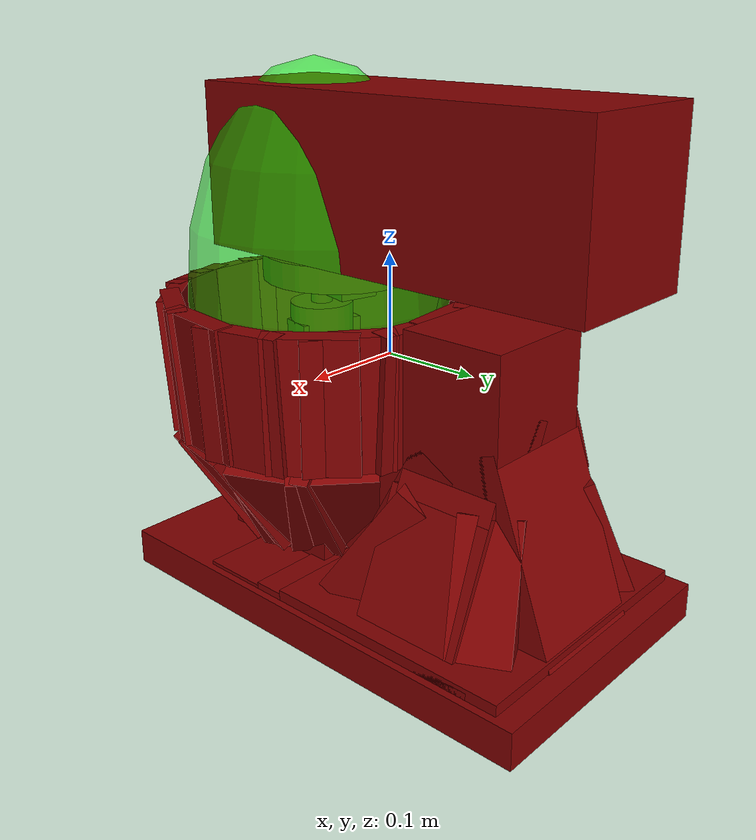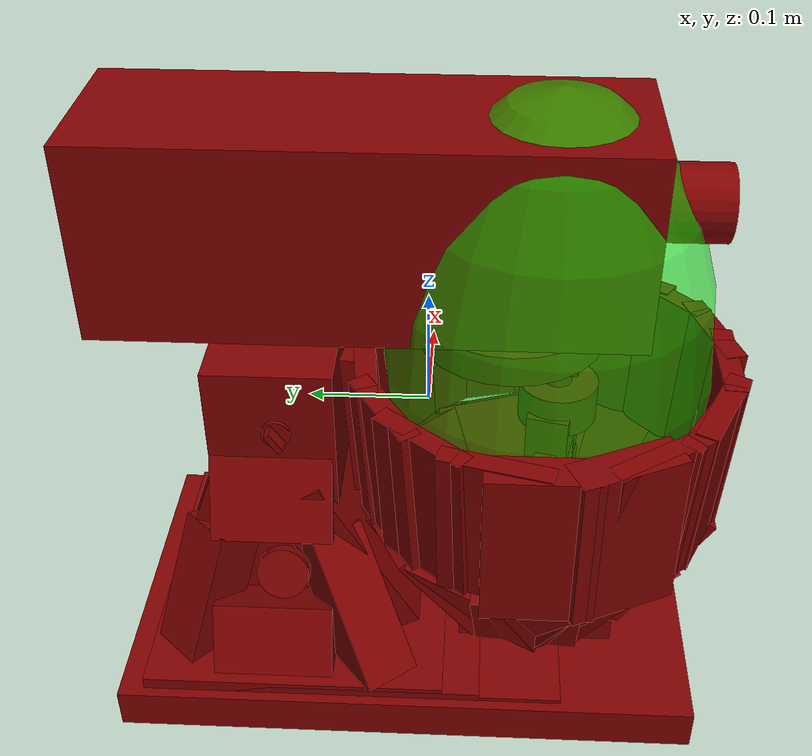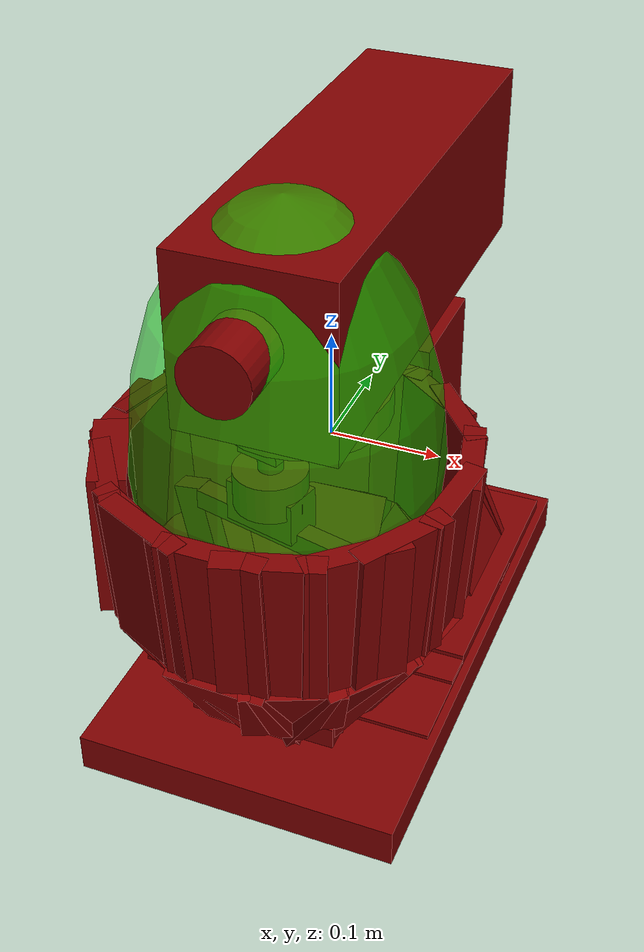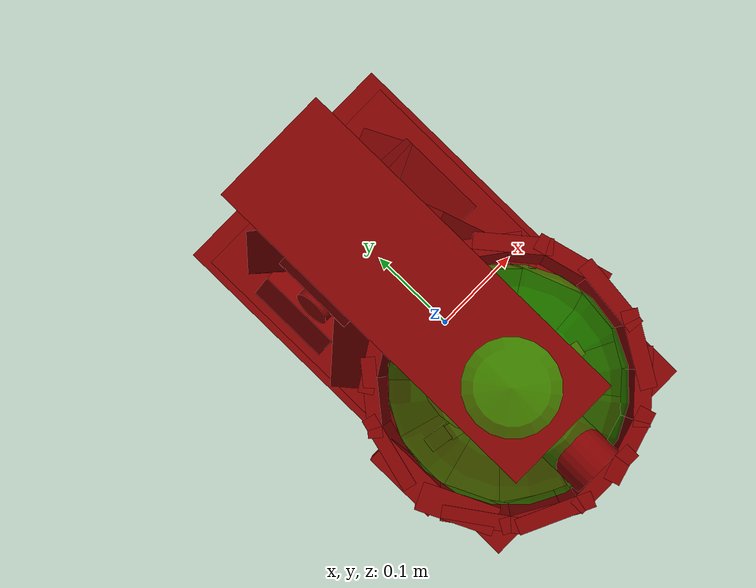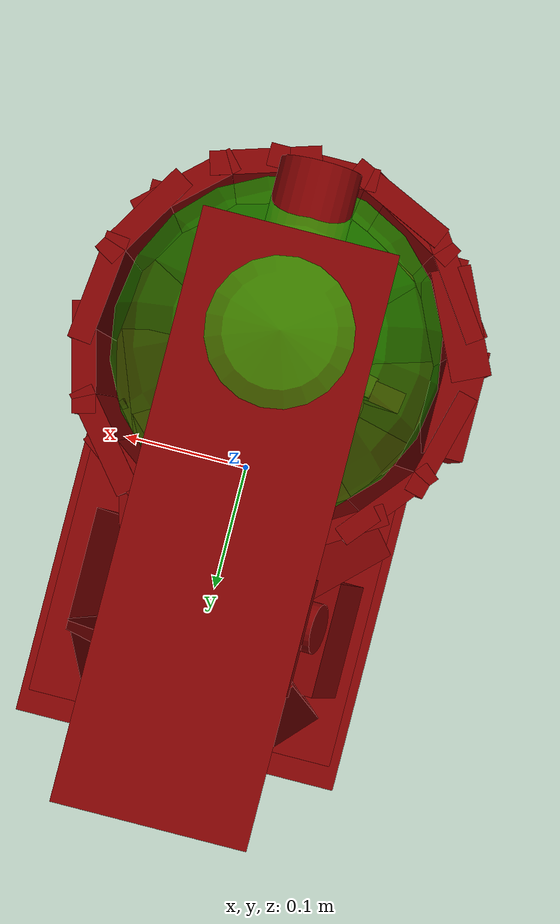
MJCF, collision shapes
<?xml version='1.0' encoding='UTF-8'?>
<mujoco model="model">
  <option timestep="0.002" gravity="0.0 0.0 -9.81"/>
  <compiler angle="radian"/>
  <asset>
    <mesh file="visuals/blender.obj" name="blender_vis"/>
    <mesh file="visuals/bowl.obj" name="bowl_vis"/>
    <mesh file="visuals/button_head_lock.obj" name="button_head_lock_vis"/>
    <mesh file="visuals/head.obj" name="head_vis"/>
    <mesh file="visuals/knob_speed.obj" name="knob_speed_vis"/>
    <mesh file="visuals/Body001.obj" name="Body001_vis"/>
    <texture file="visuals/T_BC001.png" name="Body001_material" type="2d"/>
    <material name="Body001_material" rgba="1 1 1 1.0" texture="Body001_material" shininess="0.141421377658844" specular="0.81"/>
    <texture file="visuals/T_BC001.png" name="bowl_material" type="2d"/>
    <material name="bowl_material" rgba="1 1 1 1.0" texture="bowl_material" shininess="0.141421377658844" specular="1"/>
    <texture file="visuals/T_BC001.png" name="button_head_lock_material" type="2d"/>
    <material name="button_head_lock_material" rgba="1 1 1 1.0" texture="button_head_lock_material" shininess="0.141421377658844" specular="1"/>
    <texture file="visuals/T_BC001.png" name="head_material" type="2d"/>
    <material name="head_material" rgba="1 1 1 1.0" texture="head_material" shininess="0.141421377658844" specular="0.81"/>
    <texture file="visuals/T_BC001.png" name="blender_material" type="2d"/>
    <material name="blender_material" rgba="1 1 1 1.0" texture="blender_material" shininess="0.141421377658844" specular="1"/>
    <texture file="visuals/T_BC001.png" name="knob_speed_material" type="2d"/>
    <material name="knob_speed_material" rgba="1 1 1 1.0" texture="knob_speed_material" shininess="0.141421377658844" specular="1"/>
  </asset>
  <default>
    <default class="visual">
      <geom conaffinity="0" contype="0" group="1" type="mesh"/>
    </default>
    <default class="collision">
      <geom group="0" rgba="0.5 0 0 0.5"/>
    </default>
    <default class="spawn">
      <geom group="0" rgba="1 1 1 0.5" contype="0" conaffinity="0"/>
      <site group="0" rgba="1 1 1 0.5"/>
    </default>
    <default class="region">
      <geom group="1" conaffinity="0" contype="0" rgba="0 1 0 0"/>
    </default>
  </default>
  <worldbody>
    <body>
      <body name="object">
        <geom mesh="Body001_vis" type="mesh" solimp="0.998 0.998 0.001" solref="0.001 1" friction="0.95 0.3 0.1" class="visual" material="Body001_material"/>
        <geom type="box" pos="-0.00038789 0.01485773 -0.23647999" size="0.1470741182565689 0.24640962481498718 0.01819784753024578" quat="1.0 0.0 0.0 0.0" class="collision"/>
        <geom type="box" pos="0.00292891 0.19088578 -0.13983113" size="0.06197034567594528 0.020992998033761978 0.10480103641748428" quat="3.186945605193614e-07 4.054764024541413e-10 -0.17126384377479553 0.9852252006530762" class="collision"/>
        <geom type="box" pos="-0.09736945 0.12806405 -0.19254026" size="0.02340238355100155 0.051185041666030884 0.037328436970710754" quat="4.0934835965344973e-07 0.18937274813652039 6.279142206189192e-10 0.9819052815437317" class="collision"/>
        <geom type="box" pos="0.06233383 0.12636782 -0.15236485" size="0.0234023816883564 0.052881255745887756 0.09892302751541138" quat="4.989324224879965e-07 -0.1999048888683319 -9.668909228821576e-08 0.9798153042793274" class="collision"/>
        <geom type="box" pos="0.00475315 0.12636782 -0.08266360" size="0.06014612317085266 0.05288127809762955 0.13840007781982422" quat="1.0 0.0 0.0 0.0" class="collision"/>
        <geom type="box" pos="0.07992680 0.12295687 -0.17164442" size="0.0234023816883564 0.05629220977425575 0.0786064937710762" quat="4.989324224879965e-07 -0.1999048888683319 -9.668909228821576e-08 0.9798153042793274" class="collision"/>
        <geom type="box" pos="0.03296900 0.12636782 -0.06135498" size="0.0234023816883564 0.052881255745887756 0.05018816143274307" quat="4.989324224879965e-07 -0.1999048888683319 -9.668909228821576e-08 0.9798153042793274" class="collision"/>
        <geom type="box" pos="-0.00189286 0.06877020 -0.13500409" size="0.06679213792085648 0.025309335440397263 0.08402279764413834" quat="0.9671083092689514 -0.2543649673461914 -5.648036206370866e-17 4.208608428094833e-25" class="collision"/>
        <geom type="box" pos="0.00026927 0.11101803 -0.22556834" size="0.1389281153678894 0.12880635261535645 0.01819789782166481" quat="1.0 0.0 0.0 0.0" class="collision"/>
        <geom type="box" pos="0.00026927 0.07931788 -0.22973371" size="0.1389281153678894 0.12880635261535645 0.018197907134890556" quat="1.0 0.0 0.0 0.0" class="collision"/>
        <geom type="box" pos="0.00026927 0.00961112 -0.23297984" size="0.1389281153678894 0.12880635261535645 0.018197916448116302" quat="1.0 0.0 0.0 0.0" class="collision"/>
        <geom type="box" pos="-0.07219625 0.19080603 -0.16414109" size="0.021484268829226494 0.024510791525244713 0.06869032979011536" quat="0.35829052329063416 0.17631539702415466 -0.06910073757171631 0.9142023324966431" class="collision"/>
        <geom type="box" pos="0.07551569 0.17986972 -0.16324206" size="0.01742730475962162 0.029545053839683533 0.07128416001796722" quat="0.9555922150611877 0.0435466431081295 -0.18429800868034363 0.2257906198501587" class="collision"/>
        <geom type="box" pos="-0.08465333 0.06032729 -0.16277489" size="0.021484268829226494 0.024510791525244713 0.06869032979011536" quat="0.32037287950515747 -0.2896636128425598 -0.10357760637998581 -0.8959508538246155" class="collision"/>
        <geom type="box" pos="0.07238042 0.05758709 -0.15632893" size="0.021484268829226494 0.024510791525244713 0.06869032979011536" quat="0.7780860066413879 -0.17706523835659027 -0.2515576481819153 -0.5476758480072021" class="collision"/>
        <geom type="box" pos="-0.04764510 0.12806403 -0.06842386" size="0.02340238355100155 0.051185041666030884 0.037328436970710754" quat="4.0934835965344973e-07 0.18937274813652039 6.279142206189192e-10 0.9819052815437317" class="collision"/>
        <body name="bowl">
          <geom mesh="bowl_vis" type="mesh" solimp="0.998 0.998 0.001" solref="0.001 1" friction="0.95 0.3 0.1" class="visual" material="bowl_material"/>
          <geom type="box" pos="-0.14825541 -0.09078984 -0.02201490" size="0.016078859567642212 0.044406406581401825 0.06841394305229187" quat="1.0 0.0 0.0 0.0" class="collision"/>
          <geom type="box" pos="-0.01774631 0.04657630 -0.02033799" size="0.00875962246209383 0.044406406581401825 0.0681932121515274" quat="0.7471170425415039 -0.021018153056502342 -0.023651298135519028 -0.6639389991760254" class="collision"/>
          <geom type="box" pos="0.08515379 0.02529754 -0.02143297" size="0.010286817327141762 0.044406406581401825 0.0681932121515274" quat="0.447671115398407 -0.028289711102843285 -0.014171858318150043 -0.8936383128166199" class="collision"/>
          <geom type="box" pos="0.14092685 -0.05378194 -0.02099918" size="0.009610497392714024 0.044406406581401825 0.0681932121515274" quat="0.12310067564249039 -0.03139999881386757 -0.0038969668094068766 -0.9918896555900574" class="collision"/>
          <geom type="box" pos="0.12316208 -0.16939624 -0.01973897" size="0.009641319513320923 0.044406406581401825 0.0681932121515274" quat="0.2708934545516968 0.03045661188662052 -0.00857560709118843 0.9620891809463501" class="collision"/>
          <geom type="box" pos="0.04343400 -0.23388409 -0.02027542" size="0.00974887516349554 0.044406406581401825 0.0681932121515274" quat="0.5933062434196472 0.025463253259658813 -0.018782146275043488 0.804354727268219" class="collision"/>
          <geom type="box" pos="-0.06278898 -0.22765768 -0.02030126" size="0.009340297430753708 0.044406406581401825 0.0681932121515274" quat="0.8428366184234619 0.01700722984969616 -0.02668146975338459 0.537238597869873" class="collision"/>
          <geom type="box" pos="-0.12263401 -0.17601124 -0.02128506" size="0.008992565795779228 0.044406406581401825 0.0681932121515274" quat="0.954062819480896 0.009431536309421062 -0.03020252287387848 0.2979312539100647" class="collision"/>
          <geom type="box" pos="-0.00451419 -0.20228761 -0.14650001" size="0.009864562191069126 0.044406432658433914 0.0681932121515274" quat="0.6845924258232117 0.19955039024353027 -0.19691559672355652 0.672857403755188" class="collision"/>
          <geom type="box" pos="-0.08960299 -0.14894763 -0.14675215" size="0.009229958988726139 0.044406428933143616 0.0681932121515274" quat="0.925520658493042 0.0784800723195076 -0.2691411077976227 0.2545888125896454" class="collision"/>
          <geom type="box" pos="-0.09174184 -0.04561690 -0.14690633" size="0.010463465936481953 0.044406432658433914 0.06695568561553955" quat="0.9261558651924133 -0.06953360885381699 -0.27159008383750916 -0.2522681653499603" class="collision"/>
          <geom type="box" pos="-0.00199435 0.00854396 -0.14569246" size="0.011980590410530567 0.044406428933143616 0.06371644139289856" quat="0.6856235861778259 -0.19312475621700287 -0.2032213658094406 -0.6718066930770874" class="collision"/>
          <geom type="box" pos="0.07989004 -0.16364323 -0.14554908" size="0.010591658763587475 0.044406428933143616 0.0681932121515274" quat="0.30785584449768066 0.26688408851623535 -0.0858425498008728 0.9091912508010864" class="collision"/>
          <geom type="box" pos="-0.11137675 -0.00275032 -0.02006338" size="0.008105087094008923 0.044406406581401825 0.0681932121515274" quat="0.9396122694015503 -0.010787836275994778 -0.029745087027549744 -0.34077510237693787" class="collision"/>
          <geom type="box" pos="0.09087388 -0.05407166 -0.14876561" size="0.012311420403420925 0.044406428933143616 0.0655110701918602" quat="0.17554129660129547 -0.28112170100212097 -0.040944475680589676 -0.9425918459892273" class="collision"/>
          <geom type="box" pos="-0.13605917 -0.15204099 -0.02201490" size="0.016078781336545944 0.044406406581401825 0.06841429322957993" quat="0.9760299324989319 0.0 0.0 0.21763628721237183" class="collision"/>
          <geom type="box" pos="-0.14007670 -0.05667405 -0.02006339" size="0.008105087094008923 0.044406406581401825 0.0681932121515274" quat="0.9912547469139099 -0.00405564671382308 -0.03137991949915886 -0.12811297178268433" class="collision"/>
          <geom type="box" pos="-0.07627181 0.02775766 -0.02033799" size="0.00875962246209383 0.044406406581401825 0.0681932121515274" quat="0.8737058043479919 -0.015366965904831886 -0.02765868976712227 -0.48542454838752747" class="collision"/>
          <geom type="box" pos="0.02623842 0.05215663 -0.02143296" size="0.010286817327141762 0.044406406581401825 0.0681932121515274" quat="0.6580836772918701 -0.023814741522073746 -0.020832838490605354 -0.7522796988487244" class="collision"/>
          <geom type="box" pos="0.11000617 0.00431703 -0.02099919" size="0.009610498324036598 0.044406406581401825 0.0681932121515274" quat="0.3360210359096527 -0.02979923225939274 -0.010637335479259491 -0.9413228631019592" class="collision"/>
          <geom type="box" pos="0.14304172 -0.10789217 -0.01973897" size="0.009641320444643497 0.044406406581401825 0.0681932121515274" quat="0.055014610290527344 0.03159288316965103 -0.0017415826441720128 0.9979841113090515" class="collision"/>
          <geom type="box" pos="0.09826334 -0.20014261 -0.02027542" size="0.00974887516349554 0.044406406581401825 0.0681932121515274" quat="0.40402790904045105 0.02894057333469391 -0.012790211476385593 0.9141992926597595" class="collision"/>
          <geom type="box" pos="-0.00054225 -0.23963371 -0.02030126" size="0.009340297430753708 0.044406402856111526 0.0681932121515274" quat="0.7057111263275146 0.02240642160177231 -0.022340519353747368 0.7077928185462952" class="collision"/>
          <geom type="box" pos="-0.07665950 -0.21830430 -0.02128506" size="0.008992565795779228 0.044406406581401825 0.0681932121515274" quat="0.8663532137870789 0.01577862910926342 -0.027425924316048622 0.49842849373817444" class="collision"/>
          <geom type="box" pos="0.04143391 -0.19190957 -0.14650001" size="0.009864562191069126 0.044406428933143616 0.0681932121515274" quat="0.5217445492744446 0.23762311041355133 -0.14876608550548553 0.8057211637496948" class="collision"/>
          <geom type="box" pos="-0.05825523 -0.17977159 -0.14675215" size="0.009229958988726139 0.044406428933143616 0.0681932121515274" quat="0.8479281067848206 0.1351737529039383 -0.24560968577861786 0.4499131143093109" class="collision"/>
          <geom type="box" pos="-0.10342636 -0.08718992 -0.14794933" size="0.010463465936481953 0.044406428933143616 0.0681932121515274" quat="0.9588585495948792 -0.008759032003581524 -0.2802131474018097 -0.044656168669462204" class="collision"/>
          <geom type="box" pos="-0.04568621 -0.00030734 -0.14626909" size="0.011980590410530567 0.044406428933143616 0.06440060585737228" quat="0.815398633480072 -0.1442672163248062 -0.24038104712963104 -0.5064868927001953" class="collision"/>
          <geom type="box" pos="0.10142479 -0.12106781 -0.14554908" size="0.01059165969491005 0.044406428933143616 0.0681932121515274" quat="0.10260351747274399 0.2791692018508911 -0.025701219215989113 0.954398512840271" class="collision"/>
          <geom type="box" pos="0.06559589 -0.01645897 -0.14710129" size="0.012311420403420925 0.044406428933143616 0.06352639943361282" quat="0.3764757812023163 -0.2654721736907959 -0.10114531964063644 -0.8817936778068542" class="collision"/>
          <geom type="box" pos="-0.00051315 -0.09765533 -0.20224907" size="0.06730947643518448 0.06730947643518448 0.010610570199787617" quat="1.0 0.0 0.0 0.0" class="collision"/>
          <geom name="reg_bowl" type="ellipsoid" pos="0.00000000 -0.09683610 0.04458292" size="0.13130201399326324 0.133804053068161 0.23235976696014404" rgba="0 1 0 0.5" class="region"/>
        </body>
        <body name="button_head_lock">
          <joint axis="0.9512019157409668 0.0 -0.30856916308403015" pos="-0.08556854 0.11826786 -0.12315179" limited="true" name="button_head_lock_joint" range="0.0 0.008" type="slide" damping="1" frictionloss="1" armature=".01" stiffness="1" springref="-0.4"/>
          <geom mesh="button_head_lock_vis" type="mesh" solimp="0.998 0.998 0.001" solref="0.001 1" friction="0.95 0.3 0.1" class="visual" material="button_head_lock_material"/>
          <geom class="collision" type="cylinder" pos="-0.08964324 0.11837021 -0.12130192" size="0.022103259339928627 0.005479670129716396" quat="0.8143262267112732 0.0 -0.580407440662384 0.0" name="button_head_lock_main"/>
        </body>
        <body name="head">
          <joint axis="-1.0 0.0 0.0" pos="0.00000000 0.17156493 -0.01169623" limited="true" name="head_joint" range="0.0 1.5707963267948966" type="hinge" damping="1" frictionloss="1" armature=".01" stiffness="0.05"/>
          <geom mesh="head_vis" type="mesh" solimp="0.998 0.998 0.001" solref="0.001 1" friction="0.95 0.3 0.1" class="visual" material="head_material"/>
          <geom type="cylinder" pos="0.00057805 -0.19515865 0.18749232" size="0.030359400436282158 0.030359400436282158" quat="0.7071067094802856 0.7071068286895752 0.0 0.0" class="collision"/>
          <geom type="cylinder" pos="0.00052121 -0.06621336 0.08111288" size="0.07637594640254974 0.012832795269787312" quat="1.0 0.0 0.0 0.0" class="collision"/>
          <geom type="box" pos="0.00292891 0.04564403 0.17467199" size="0.0710258036851883 0.215374156832695 0.07949654757976532" quat="1.0 0.0 0.0 0.0" class="collision"/>
          <geom type="box" pos="-0.00497241 -0.08007210 0.05800753" size="0.019612029194831848 0.04557682201266289 0.008404230698943138" quat="0.9928157329559326 -1.214005895810999e-09 -1.4789035551743268e-09 -0.11965357512235641" class="collision"/>
          <body name="blender">
            <joint axis="0.0 0.0 1.0" pos="-0.01222836 -0.10607542 -0.06467650" limited="false" name="blender_joint" range="0 360" type="hinge" damping="1" frictionloss="1" armature=".01" stiffness="0.05"/>
            <geom mesh="blender_vis" type="mesh" solimp="0.998 0.998 0.001" solref="0.001 1" friction="0.95 0.3 0.1" class="visual" material="blender_material"/>
            <geom type="cylinder" pos="-0.01170430 -0.10699420 0.01343783" size="0.03237089887261391 0.01715884543955326" quat="0.7855479121208191 0.0 0.0 0.6188008785247803" class="collision"/>
            <geom type="box" pos="-0.01005533 -0.10664847 -0.02998396" size="0.008867871947586536 0.07720372825860977 0.009225652553141117" quat="0.7855479121208191 0.0 0.0 0.6188008785247803" class="collision"/>
            <geom type="box" pos="0.02588287 -0.11614037 -0.13265285" size="0.008867871947586536 0.05385828763246536 0.013741519302129745" quat="0.72093266248703 -0.2991736829280853 -0.2465105652809143 0.5744421482086182" class="collision"/>
            <geom type="box" pos="-0.05288408 -0.09543003 -0.13650371" size="0.008867872878909111 0.04532240703701973 0.013741519302129745" quat="0.2993749976158142 -0.7114409804344177 -0.5862623453140259 0.2460137903690338" class="collision"/>
            <geom type="box" pos="-0.01271248 -0.10540754 -0.00761286" size="0.017273016273975372 0.033695898950099945 0.020048784092068672" quat="0.7855479121208191 0.0 0.0 0.6188008785247803" class="collision"/>
            <geom type="box" pos="-0.08726601 -0.08689813 -0.06778527" size="0.008867871947586536 0.04532240703701973 0.013741519302129745" quat="0.46521297097206116 -0.5983477830886841 -0.5078616738319397 0.40943053364753723" class="collision"/>
            <geom type="box" pos="0.06236409 -0.12325095 -0.06955779" size="0.008867871947586536 0.04216091334819794 0.013741519302129745" quat="0.609071671962738 -0.476049542427063 -0.38677018880844116 0.502809464931488" class="collision"/>
            <geom type="cylinder" pos="-0.01155923 -0.10639195 0.03688355" size="0.01104024238884449 0.007753560785204172" quat="0.7855479121208191 0.0 0.0 0.6188008785247803" class="collision"/>
          </body>
        </body>
        <body name="knob_speed">
          <joint axis="1.0 0.0 0.0" pos="-0.06336696 0.12116056 0.00103363" limited="true" name="knob_speed_joint" range="0.0 3.6826447217080354" type="hinge" damping="0.05" armature="0.001"/>
          <geom mesh="knob_speed_vis" type="mesh" solimp="0.998 0.998 0.001" solref="0.001 1" friction="0.95 0.3 0.1" class="visual" material="knob_speed_material"/>
          <geom type="cylinder" pos="-0.05776418 0.12134910 0.00127127" size="0.012216546572744846 0.001797121251001954" quat="0.7071068286895752 0.0 -0.7071067690849304 0.0" class="collision"/>
          <geom class="collision" type="box" pos="-0.06544097 0.12114653 0.00123843" size="0.006438411772251129 0.009671840816736221 0.0026913920883089304" quat="0.8842654228210449 0.46698465943336487 5.831052233003938e-17 -1.120134898294808e-16" name="knob_speed_main"/>
        </body>
        <geom class="region" name="reg_main" type="box" pos="-2.412999999999721e-05 0.011418400000000009 2.500000000016378e-06" size="0.15060022 0.24668811000000002 0.25375311"/>
      </body>
    </body>
  </worldbody>
  <actuator>
    <motor name="button_head_lock_joint_actuator" joint="button_head_lock_joint" gear="1"/>
    <motor name="head_joint_actuator" joint="head_joint" gear="40"/>
    <motor name="knob_speed_joint_actuator" joint="knob_speed_joint" gear="8"/>
    <motor name="blender_joint_actuator" joint="blender_joint" gear="20"/>
  </actuator>
</mujoco>
